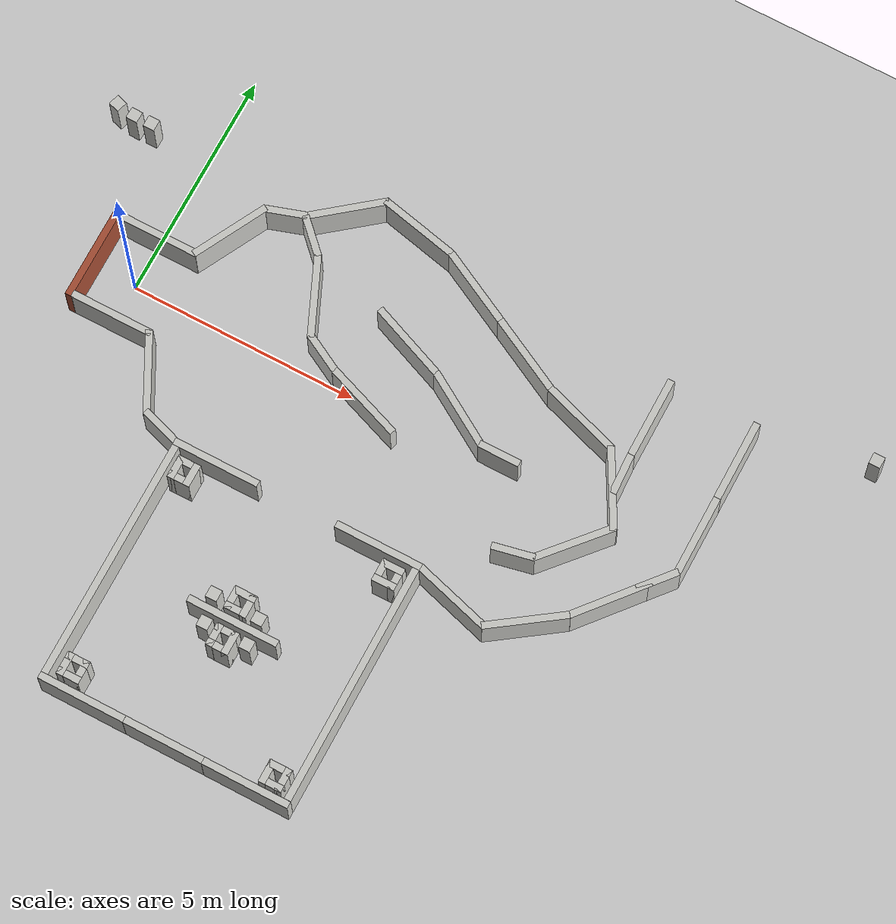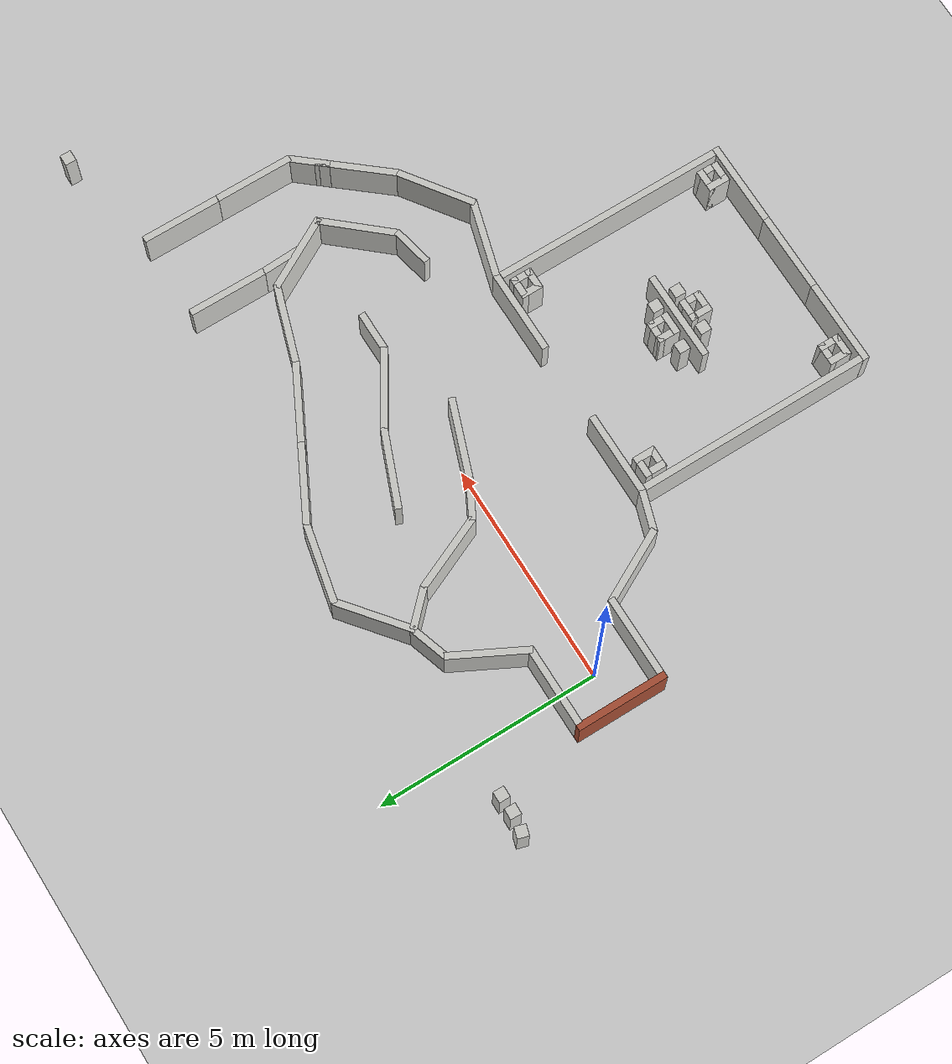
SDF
<sdf version="1.6">
 <world name="default">
  <model name="ground_plane">
   <static>1</static>
   <link name="link">
    <collision name="collision">
     <geometry><plane><normal>0 0 1</normal><size>100 100</size></plane></geometry>
     <surface><friction><ode><mu>100</mu><mu2>50</mu2></ode></friction></surface>
    </collision>
    <visual name="visual">
     <cast_shadows>0</cast_shadows>
     <geometry><plane><normal>0 0 1</normal><size>100 100</size></plane></geometry>
     <material>
      <script><uri>file://media/materials/scripts/concrete.material</uri><name>Concrete/1</name></script>
     </material>
    </visual>
   </link>
  </model>
  <model name="track_end">
   <static>1</static>
   <pose>0 0 0 0 -0 1.5708</pose>
   <link name="Wall_1">
    <collision name="Wall_1_Collision">
     <geometry><box><size>1.8 0.15 1</size></box></geometry>
     <pose>0 0 0.5 0 -0 0</pose>
    </collision>
    <visual name="Wall_1_Visual">
     <pose>0 0 0.5 0 -0 0</pose>
     <geometry><box><size>1.8 0.15 1</size></box></geometry>
     <material>
      <script><uri>file://media/materials/scripts/gazebo.material</uri><name>Gazebo/CeilingTiled</name></script>
      <ambient>1 0.764706 0.305882 1</ambient>
     </material>
    </visual>
    <pose>-0.95 -0.065 0 0 0 -1.5708</pose>
   </link>
   <link name="Wall_2">
    <collision name="Wall_2_Collision">
     <geometry><box><size>1.8 0.15 1</size></box></geometry>
     <pose>0 0 0.5 0 -0 0</pose>
    </collision>
    <visual name="Wall_2_Visual">
     <pose>0 0 0.5 0 -0 0</pose>
     <geometry><box><size>1.8 0.15 1</size></box></geometry>
     <material>
      <script><uri>file://media/materials/scripts/gazebo.material</uri><name>Gazebo/CeilingTiled</name></script>
      <ambient>1 0.764706 0.305882 1</ambient>
     </material>
    </visual>
    <pose>0.95 -0.065 0 0 0 -1.5708</pose>
   </link>
   <link name="Wall_3">
    <collision name="Wall_3_Collision">
     <geometry><box><size>2.05 0.15 1.5</size></box></geometry>
     <pose>0 0 0.75 0 -0 0</pose>
    </collision>
    <visual name="Wall_3_Visual">
     <pose>0 0 0.5 0 -0 0</pose>
     <geometry><box><size>2.05 0.15 1</size></box></geometry>
     <material>
      <script><uri>file://media/materials/scripts/gazebo.material</uri><name>Gazebo/Bricks</name></script>
      <ambient>0.996078 0.47451 0.0196078 1</ambient>
     </material>
    </visual>
    <pose>0 0.89 0 0 -0 0</pose>
   </link>
  </model>
  <model name="obstacle_wall_full">
   <static>1</static>
   <pose>1.3045 -1.68499 0 0 0 -1.08983</pose>
   <link name="Wall">
    <collision name="Wall_Collision">
     <geometry><box><size>1.75 0.15 1</size></box></geometry>
     <pose>0 0 0.5 0 -0 0</pose>
    </collision>
    <visual name="Wall_Visual">
     <pose>0 0 0.5 0 -0 0</pose>
     <geometry><box><size>1.75 0.15 1</size></box></geometry>
     <material>
      <script><uri>file://media/materials/scripts/gazebo.material</uri><name>Gazebo/CeilingTiled</name></script>
      <ambient>1 0.764706 0.305882 1</ambient>
     </material>
    </visual>
   </link>
  </model>
  <model name="obstacle_wall_full_clone">
   <static>1</static>
   <pose>1.30409 1.69422 0 0 -0 1.08983</pose>
   <link name="Wall">
    <collision name="Wall_Collision">
     <geometry><box><size>1.75 0.15 1</size></box></geometry>
     <pose>0 0 0.5 0 -0 0</pose>
    </collision>
    <visual name="Wall_Visual">
     <pose>0 0 0.5 0 -0 0</pose>
     <geometry><box><size>1.75 0.15 1</size></box></geometry>
     <material>
      <script><uri>file://media/materials/scripts/gazebo.material</uri><name>Gazebo/CeilingTiled</name></script>
      <ambient>1 0.764706 0.305882 1</ambient>
     </material>
    </visual>
   </link>
  </model>
  <model name="obstacle_wall_short">
   <static>1</static>
   <pose>2.09444 -2.56147 0 0 0 -0.312022</pose>
   <link name="Wall">
    <collision name="Wall_Collision">
     <geometry><box><size>0.9 0.15 1</size></box></geometry>
     <pose>0 0 0.5 0 -0 0</pose>
    </collision>
    <visual name="Wall_Visual">
     <pose>0 0 0.5 0 -0 0</pose>
     <geometry><box><size>0.9 0.15 1</size></box></geometry>
     <material>
      <script><uri>file://media/materials/scripts/gazebo.material</uri><name>Gazebo/CeilingTiled</name></script>
      <ambient>1 0.764706 0.305882 1</ambient>
     </material>
    </visual>
   </link>
  </model>
  <model name="obstacle_wall_short_clone">
   <static>1</static>
   <pose>2.09475 2.57016 0 0 -0 0.312022</pose>
   <link name="Wall">
    <collision name="Wall_Collision">
     <geometry><box><size>0.9 0.15 1</size></box></geometry>
     <pose>0 0 0.5 0 -0 0</pose>
    </collision>
    <visual name="Wall_Visual">
     <pose>0 0 0.5 0 -0 0</pose>
     <geometry><box><size>0.9 0.15 1</size></box></geometry>
     <material>
      <script><uri>file://media/materials/scripts/gazebo.material</uri><name>Gazebo/CeilingTiled</name></script>
      <ambient>1 0.764706 0.305882 1</ambient>
     </material>
    </visual>
   </link>
  </model>
  <model name="obstacle_wall_full_1">
   <static>1</static>
   <pose>5.57374 1.31756 0 0 0 -0.381039</pose>
   <link name="Wall">
    <collision name="Wall_Collision">
     <geometry><box><size>1.75 0.15 1</size></box></geometry>
     <pose>0 0 0.5 0 -0 0</pose>
    </collision>
    <visual name="Wall_Visual">
     <pose>0 0 0.5 0 -0 0</pose>
     <geometry><box><size>1.75 0.15 1</size></box></geometry>
     <material>
      <script><uri>file://media/materials/scripts/gazebo.material</uri><name>Gazebo/CeilingTiled</name></script>
      <ambient>1 0.764706 0.305882 1</ambient>
     </material>
    </visual>
   </link>
  </model>
  <model name="obstacle_wall_full_2">
   <static>1</static>
   <pose>3.14271 3.20394 0 0 -0 0.673556</pose>
   <link name="Wall">
    <collision name="Wall_Collision">
     <geometry><box><size>1.75 0.15 1</size></box></geometry>
     <pose>0 0 0.5 0 -0 0</pose>
    </collision>
    <visual name="Wall_Visual">
     <pose>0 0 0.5 0 -0 0</pose>
     <geometry><box><size>1.75 0.15 1</size></box></geometry>
     <material>
      <script><uri>file://media/materials/scripts/gazebo.material</uri><name>Gazebo/CeilingTiled</name></script>
      <ambient>1 0.764706 0.305882 1</ambient>
     </material>
    </visual>
   </link>
  </model>
  <model name="obstacle_wall_short_0">
   <static>1</static>
   <pose>2.80877 2.37167 0 0 0 -0.784312</pose>
   <link name="Wall">
    <collision name="Wall_Collision">
     <geometry><box><size>0.9 0.15 1</size></box></geometry>
     <pose>0 0 0.5 0 -0 0</pose>
    </collision>
    <visual name="Wall_Visual">
     <pose>0 0 0.5 0 -0 0</pose>
     <geometry><box><size>0.9 0.15 1</size></box></geometry>
     <material>
      <script><uri>file://media/materials/scripts/gazebo.material</uri><name>Gazebo/CeilingTiled</name></script>
      <ambient>1 0.764706 0.305882 1</ambient>
     </material>
    </visual>
   </link>
  </model>
  <model name="obstacle_wall_full_3">
   <static>1</static>
   <pose>4.62017 3.54539 0 0 0 -0.217442</pose>
   <link name="Wall">
    <collision name="Wall_Collision">
     <geometry><box><size>1.75 0.15 1</size></box></geometry>
     <pose>0 0 0.5 0 -0 0</pose>
    </collision>
    <visual name="Wall_Visual">
     <pose>0 0 0.5 0 -0 0</pose>
     <geometry><box><size>1.75 0.15 1</size></box></geometry>
     <material>
      <script><uri>file://media/materials/scripts/gazebo.material</uri><name>Gazebo/CeilingTiled</name></script>
      <ambient>1 0.764706 0.305882 1</ambient>
     </material>
    </visual>
   </link>
  </model>
  <model name="obstacle_wall_full_3_clone">
   <static>1</static>
   <pose>6.22651 2.96567 0 0 0 -0.475423</pose>
   <link name="Wall">
    <collision name="Wall_Collision">
     <geometry><box><size>1.75 0.15 1</size></box></geometry>
     <pose>0 0 0.5 0 -0 0</pose>
    </collision>
    <visual name="Wall_Visual">
     <pose>0 0 0.5 0 -0 0</pose>
     <geometry><box><size>1.75 0.15 1</size></box></geometry>
     <material>
      <script><uri>file://media/materials/scripts/gazebo.material</uri><name>Gazebo/CeilingTiled</name></script>
      <ambient>1 0.764706 0.305882 1</ambient>
     </material>
    </visual>
   </link>
  </model>
  <model name="obstacle_wall_full_3_clone_0">
   <static>1</static>
   <pose>9.37232 1.50284 0 0 0 -0.313905</pose>
   <link name="Wall">
    <collision name="Wall_Collision">
     <geometry><box><size>1.75 0.15 1</size></box></geometry>
     <pose>0 0 0.5 0 -0 0</pose>
    </collision>
    <visual name="Wall_Visual">
     <pose>0 0 0.5 0 -0 0</pose>
     <geometry><box><size>1.75 0.15 1</size></box></geometry>
     <material>
      <script><uri>file://media/materials/scripts/gazebo.material</uri><name>Gazebo/CeilingTiled</name></script>
      <ambient>1 0.764706 0.305882 1</ambient>
     </material>
    </visual>
   </link>
  </model>
  <model name="obstacle_wall_full_1_clone">
   <static>1</static>
   <pose>5.39001 -0.205171 0 0 0 -0.350489</pose>
   <link name="Wall">
    <collision name="Wall_Collision">
     <geometry><box><size>1.75 0.15 1</size></box></geometry>
     <pose>0 0 0.5 0 -0 0</pose>
    </collision>
    <visual name="Wall_Visual">
     <pose>0 0 0.5 0 -0 0</pose>
     <geometry><box><size>1.75 0.15 1</size></box></geometry>
     <material>
      <script><uri>file://media/materials/scripts/gazebo.material</uri><name>Gazebo/CeilingTiled</name></script>
      <ambient>1 0.764706 0.305882 1</ambient>
     </material>
    </visual>
   </link>
  </model>
  <model name="obstacle_wall_full_1_clone_clone">
   <static>1</static>
   <pose>3.46437 1.27793 0 0 0 -1.15469</pose>
   <link name="Wall">
    <collision name="Wall_Collision">
     <geometry><box><size>1.75 0.15 1</size></box></geometry>
     <pose>0 0 0.5 0 -0 0</pose>
    </collision>
    <visual name="Wall_Visual">
     <pose>0 0 0.5 0 -0 0</pose>
     <geometry><box><size>1.75 0.15 1</size></box></geometry>
     <material>
      <script><uri>file://media/materials/scripts/gazebo.material</uri><name>Gazebo/CeilingTiled</name></script>
      <ambient>1 0.764706 0.305882 1</ambient>
     </material>
    </visual>
   </link>
  </model>
  <model name="obstacle_wall_full_1_clone_0">
   <static>1</static>
   <pose>7.12219 0.54276 0 0 0 -0.548597</pose>
   <link name="Wall">
    <collision name="Wall_Collision">
     <geometry><box><size>1.75 0.15 1</size></box></geometry>
     <pose>0 0 0.5 0 -0 0</pose>
    </collision>
    <visual name="Wall_Visual">
     <pose>0 0 0.5 0 -0 0</pose>
     <geometry><box><size>1.75 0.15 1</size></box></geometry>
     <material>
      <script><uri>file://media/materials/scripts/gazebo.material</uri><name>Gazebo/CeilingTiled</name></script>
      <ambient>1 0.764706 0.305882 1</ambient>
     </material>
    </visual>
   </link>
  </model>
  <model name="obstacle_wall_full_1_clone_clone_0">
   <static>1</static>
   <pose>8.83537 -2.93365 0 0 0 -0.280347</pose>
   <link name="Wall">
    <collision name="Wall_Collision">
     <geometry><box><size>1.75 0.15 1</size></box></geometry>
     <pose>0 0 0.5 0 -0 0</pose>
    </collision>
    <visual name="Wall_Visual">
     <pose>0 0 0.5 0 -0 0</pose>
     <geometry><box><size>1.75 0.15 1</size></box></geometry>
     <material>
      <script><uri>file://media/materials/scripts/gazebo.material</uri><name>Gazebo/CeilingTiled</name></script>
      <ambient>1 0.764706 0.305882 1</ambient>
     </material>
    </visual>
   </link>
  </model>
  <model name="obstacle_wall_full_1_clone_clone_1">
   <static>1</static>
   <pose>10.3251 -2.68236 0 0 -0 0.614772</pose>
   <link name="Wall">
    <collision name="Wall_Collision">
     <geometry><box><size>1.75 0.15 1</size></box></geometry>
     <pose>0 0 0.5 0 -0 0</pose>
    </collision>
    <visual name="Wall_Visual">
     <pose>0 0 0.5 0 -0 0</pose>
     <geometry><box><size>1.75 0.15 1</size></box></geometry>
     <material>
      <script><uri>file://media/materials/scripts/gazebo.material</uri><name>Gazebo/CeilingTiled</name></script>
      <ambient>1 0.764706 0.305882 1</ambient>
     </material>
    </visual>
   </link>
  </model>
  <model name="obstacle_wall_short_1">
   <static>1</static>
   <pose>4.18297 0.301276 0 0 0 -0.489846</pose>
   <link name="Wall">
    <collision name="Wall_Collision">
     <geometry><box><size>0.9 0.15 1</size></box></geometry>
     <pose>0 0 0.5 0 -0 0</pose>
    </collision>
    <visual name="Wall_Visual">
     <pose>0 0 0.5 0 -0 0</pose>
     <geometry><box><size>0.9 0.15 1</size></box></geometry>
     <material>
      <script><uri>file://media/materials/scripts/gazebo.material</uri><name>Gazebo/CeilingTiled</name></script>
      <ambient>1 0.764706 0.305882 1</ambient>
     </material>
    </visual>
   </link>
  </model>
  <model name="obstacle_wall_full_4">
   <static>1</static>
   <pose>10.4365 -0.832267 0 0 0 -2.28923</pose>
   <link name="Wall">
    <collision name="Wall_Collision">
     <geometry><box><size>1.75 0.15 1</size></box></geometry>
     <pose>0 0 0.5 0 -0 0</pose>
    </collision>
    <visual name="Wall_Visual">
     <pose>0 0 0.5 0 -0 0</pose>
     <geometry><box><size>1.75 0.15 1</size></box></geometry>
     <material>
      <script><uri>file://media/materials/scripts/gazebo.material</uri><name>Gazebo/CeilingTiled</name></script>
      <ambient>1 0.764706 0.305882 1</ambient>
     </material>
    </visual>
   </link>
  </model>
  <model name="obstacle_wall_full_3_clone_clone">
   <static>1</static>
   <pose>7.77548 2.16764 0 0 0 -0.475423</pose>
   <link name="Wall">
    <collision name="Wall_Collision">
     <geometry><box><size>1.75 0.15 1</size></box></geometry>
     <pose>0 0 0.5 0 -0 0</pose>
    </collision>
    <visual name="Wall_Visual">
     <pose>0 0 0.5 0 -0 0</pose>
     <geometry><box><size>1.75 0.15 1</size></box></geometry>
     <material>
      <script><uri>file://media/materials/scripts/gazebo.material</uri><name>Gazebo/CeilingTiled</name></script>
      <ambient>1 0.764706 0.305882 1</ambient>
     </material>
    </visual>
   </link>
  </model>
  <model name="room_3x3_split">
   <static>1</static>
   <pose>5.24355 -5.39607 0 0 -0 0</pose>
   <link name="Wall_1">
    <collision name="Wall_1_Collision">
     <geometry><box><size>5.25 0.15 1</size></box></geometry>
     <pose>0 0 0.5 0 -0 0</pose>
    </collision>
    <visual name="Wall_1_Visual">
     <pose>0 0 0.5 0 -0 0</pose>
     <geometry><box><size>5.25 0.15 1</size></box></geometry>
     <material>
      <script><uri>file://media/materials/scripts/gazebo.material</uri><name>Gazebo/CeilingTiled</name></script>
      <ambient>1 0.764706 0.305882 1</ambient>
     </material>
    </visual>
    <pose>-2.69653 -0.003278 0 0 0 -1.5708</pose>
   </link>
   <link name="Wall_2">
    <collision name="Wall_2_Collision">
     <geometry><box><size>5.25 0.15 1</size></box></geometry>
     <pose>0 0 0.5 0 -0 0</pose>
    </collision>
    <visual name="Wall_2_Visual">
     <pose>0 0 0.5 0 -0 0</pose>
     <geometry><box><size>5.25 0.15 1</size></box></geometry>
     <material>
      <script><uri>file://media/materials/scripts/gazebo.material</uri><name>Gazebo/CeilingTiled</name></script>
      <ambient>1 0.764706 0.305882 1</ambient>
     </material>
    </visual>
    <pose>2.69688 -0.000452 0 0 0 -1.5708</pose>
   </link>
   <link name="Wall_3">
    <collision name="Wall_3_Collision">
     <geometry><box><size>1.9 0.15 1</size></box></geometry>
     <pose>0 0 0.5 0 -0 0</pose>
    </collision>
    <visual name="Wall_3_Visual">
     <pose>0 0 0.5 0 -0 0</pose>
     <geometry><box><size>1.9 0.15 1</size></box></geometry>
     <material>
      <script><uri>file://media/materials/scripts/gazebo.material</uri><name>Gazebo/CeilingTiled</name></script>
      <ambient>1 0.764706 0.305882 1</ambient>
     </material>
    </visual>
    <pose>-1.82279 -2.70217 0 0 -0 0</pose>
   </link>
   <link name="Wall_4">
    <collision name="Wall_4_Collision">
     <geometry><box><size>1.9 0.15 1</size></box></geometry>
     <pose>0 0 0.5 0 -0 0</pose>
    </collision>
    <visual name="Wall_4_Visual">
     <pose>0 0 0.5 0 -0 0</pose>
     <geometry><box><size>1.9 0.15 1</size></box></geometry>
     <material>
      <script><uri>file://media/materials/scripts/gazebo.material</uri><name>Gazebo/CeilingTiled</name></script>
      <ambient>1 0.764706 0.305882 1</ambient>
     </material>
    </visual>
    <pose>-1.82219 2.69878 0 0 -0 0</pose>
   </link>
   <link name="Wall_5">
    <collision name="Wall_5_Collision">
     <geometry><box><size>1.9 0.15 1</size></box></geometry>
     <pose>0 0 0.5 0 -0 0</pose>
    </collision>
    <visual name="Wall_5_Visual">
     <pose>0 0 0.5 0 -0 0</pose>
     <geometry><box><size>1.9 0.15 1</size></box></geometry>
     <material>
      <script><uri>file://media/materials/scripts/gazebo.material</uri><name>Gazebo/CeilingTiled</name></script>
      <ambient>1 0.764706 0.305882 1</ambient>
     </material>
    </visual>
    <pose>1.82194 2.70217 0 0 -0 0</pose>
   </link>
   <link name="Wall_6">
    <collision name="Wall_6_Collision">
     <geometry><box><size>1.9 0.15 1</size></box></geometry>
     <pose>0 0 0.5 0 -0 0</pose>
    </collision>
    <visual name="Wall_6_Visual">
     <pose>0 0 0.5 0 -0 0</pose>
     <geometry><box><size>1.9 0.15 1</size></box></geometry>
     <material>
      <script><uri>file://media/materials/scripts/gazebo.material</uri><name>Gazebo/CeilingTiled</name></script>
      <ambient>1 0.764706 0.305882 1</ambient>
     </material>
    </visual>
    <pose>1.82279 -2.70173 0 0 -0 0</pose>
   </link>
   <link name="Wall_7">
    <collision name="Wall_7_Collision">
     <geometry><box><size>2 0.15 1</size></box></geometry>
     <pose>0 0 0.5 0 -0 0</pose>
    </collision>
    <visual name="Wall_7_Visual">
     <pose>0 0 0.5 0 -0 0</pose>
     <geometry><box><size>2 0.15 1</size></box></geometry>
     <material>
      <script><uri>file://media/materials/scripts/gazebo.material</uri><name>Gazebo/CeilingTiled</name></script>
      <ambient>1 0.764706 0.305882 1</ambient>
     </material>
    </visual>
    <pose>0.033144 0.01482 0 0 -0 0</pose>
   </link>
  </model>
  <model name="obstacle_wall_full_6">
   <static>1</static>
   <pose>5.24644 -8.09756 0 0 -0 0</pose>
   <link name="Wall">
    <collision name="Wall_Collision">
     <geometry><box><size>1.75 0.15 1</size></box></geometry>
     <pose>0 0 0.5 0 -0 0</pose>
    </collision>
    <visual name="Wall_Visual">
     <pose>0 0 0.5 0 -0 0</pose>
     <geometry><box><size>1.75 0.15 1</size></box></geometry>
     <material>
      <script><uri>file://media/materials/scripts/gazebo.material</uri><name>Gazebo/CeilingTiled</name></script>
      <ambient>1 0.764706 0.305882 1</ambient>
     </material>
    </visual>
   </link>
  </model>
  <model name="obstacle_wall_short_3">
   <static>1</static>
   <pose>8.28156 0.092512 0 0 -0 0</pose>
   <link name="Wall">
    <collision name="Wall_Collision">
     <geometry><box><size>0.9 0.15 1</size></box></geometry>
     <pose>0 0 0.5 0 -0 0</pose>
    </collision>
    <visual name="Wall_Visual">
     <pose>0 0 0.5 0 -0 0</pose>
     <geometry><box><size>0.9 0.15 1</size></box></geometry>
     <material>
      <script><uri>file://media/materials/scripts/gazebo.material</uri><name>Gazebo/CeilingTiled</name></script>
      <ambient>1 0.764706 0.305882 1</ambient>
     </material>
    </visual>
   </link>
  </model>
  <model name="obstacle_wall_full_7">
   <static>1</static>
   <pose>10.5839 0.504469 0 0 0 -1.06076</pose>
   <link name="Wall">
    <collision name="Wall_Collision">
     <geometry><box><size>1.75 0.15 1</size></box></geometry>
     <pose>0 0 0.5 0 -0 0</pose>
    </collision>
    <visual name="Wall_Visual">
     <pose>0 0 0.5 0 -0 0</pose>
     <geometry><box><size>1.75 0.15 1</size></box></geometry>
     <material>
      <script><uri>file://media/materials/scripts/gazebo.material</uri><name>Gazebo/CeilingTiled</name></script>
      <ambient>1 0.764706 0.305882 1</ambient>
     </material>
    </visual>
   </link>
  </model>
  <model name="obstacle_wall_short_4">
   <static>1</static>
   <pose>9.46195 -1.56066 0 0 -0 0.208509</pose>
   <link name="Wall">
    <collision name="Wall_Collision">
     <geometry><box><size>0.9 0.15 1</size></box></geometry>
     <pose>0 0 0.5 0 -0 0</pose>
    </collision>
    <visual name="Wall_Visual">
     <pose>0 0 0.5 0 -0 0</pose>
     <geometry><box><size>0.9 0.15 1</size></box></geometry>
     <material>
      <script><uri>file://media/materials/scripts/gazebo.material</uri><name>Gazebo/CeilingTiled</name></script>
      <ambient>1 0.764706 0.305882 1</ambient>
     </material>
    </visual>
   </link>
  </model>
  <model name="obstacle_wall_full_8">
   <static>1</static>
   <pose>11.5895 -1.51746 0 0 -0 0.874719</pose>
   <link name="Wall">
    <collision name="Wall_Collision">
     <geometry><box><size>1.75 0.15 1</size></box></geometry>
     <pose>0 0 0.5 0 -0 0</pose>
    </collision>
    <visual name="Wall_Visual">
     <pose>0 0 0.5 0 -0 0</pose>
     <geometry><box><size>1.75 0.15 1</size></box></geometry>
     <material>
      <script><uri>file://media/materials/scripts/gazebo.material</uri><name>Gazebo/CeilingTiled</name></script>
      <ambient>1 0.764706 0.305882 1</ambient>
     </material>
    </visual>
   </link>
  </model>
  <model name="track_straight">
   <static>1</static>
   <pose>11.5484 2.17193 0 0 -0 0</pose>
   <link name="Wall_1">
    <collision name="Wall_1_Collision">
     <geometry><box><size>1.75 0.15 1</size></box></geometry>
     <pose>0 0 0.5 0 -0 0</pose>
    </collision>
    <visual name="Wall_1_Visual">
     <pose>0 0 0.5 0 -0 0</pose>
     <geometry><box><size>1.75 0.15 1</size></box></geometry>
     <material>
      <script><uri>file://media/materials/scripts/gazebo.material</uri><name>Gazebo/CeilingTiled</name></script>
      <ambient>1 0.764706 0.305882 1</ambient>
     </material>
    </visual>
    <pose>-0.955 0.002 0 0 0 -1.5708</pose>
   </link>
   <link name="Wall_2">
    <collision name="Wall_2_Collision">
     <geometry><box><size>1.75 0.15 1</size></box></geometry>
     <pose>0 0 0.5 0 -0 0</pose>
    </collision>
    <visual name="Wall_2_Visual">
     <pose>0 0 0.5 0 -0 0</pose>
     <geometry><box><size>1.75 0.15 1</size></box></geometry>
     <material>
      <script><uri>file://media/materials/scripts/gazebo.material</uri><name>Gazebo/CeilingTiled</name></script>
      <ambient>1 0.764706 0.305882 1</ambient>
     </material>
    </visual>
    <pose>0.955 0.002 0 0 0 -1.5708</pose>
   </link>
  </model>
  <model name="obstacle_wall_full_10">
   <static>1</static>
   <pose>12.5056 0.423565 0 0 0 -1.5708</pose>
   <link name="Wall">
    <collision name="Wall_Collision">
     <geometry><box><size>1.75 0.15 1</size></box></geometry>
     <pose>0 0 0.5 0 -0 0</pose>
    </collision>
    <visual name="Wall_Visual">
     <pose>0 0 0.5 0 -0 0</pose>
     <geometry><box><size>1.75 0.15 1</size></box></geometry>
     <material>
      <script><uri>file://media/materials/scripts/gazebo.material</uri><name>Gazebo/CeilingTiled</name></script>
      <ambient>1 0.764706 0.305882 1</ambient>
     </material>
    </visual>
   </link>
  </model>
  <model name="obstacle_wall_short_7">
   <static>1</static>
   <pose>12.2351 -0.745772 0 0 -0 0.872096</pose>
   <link name="Wall">
    <collision name="Wall_Collision">
     <geometry><box><size>0.9 0.15 1</size></box></geometry>
     <pose>0 0 0.5 0 -0 0</pose>
    </collision>
    <visual name="Wall_Visual">
     <pose>0 0 0.5 0 -0 0</pose>
     <geometry><box><size>0.9 0.15 1</size></box></geometry>
     <material>
      <script><uri>file://media/materials/scripts/gazebo.material</uri><name>Gazebo/CeilingTiled</name></script>
      <ambient>1 0.764706 0.305882 1</ambient>
     </material>
    </visual>
   </link>
  </model>
  <model name="obstacle_wall_short_8">
   <static>1</static>
   <pose>10.6141 0.867782 0 0 0 -1.5211</pose>
   <link name="Wall">
    <collision name="Wall_Collision">
     <geometry><box><size>0.9 0.15 1</size></box></geometry>
     <pose>0 0 0.5 0 -0 0</pose>
    </collision>
    <visual name="Wall_Visual">
     <pose>0 0 0.5 0 -0 0</pose>
     <geometry><box><size>0.9 0.15 1</size></box></geometry>
     <material>
      <script><uri>file://media/materials/scripts/gazebo.material</uri><name>Gazebo/CeilingTiled</name></script>
      <ambient>1 0.764706 0.305882 1</ambient>
     </material>
    </visual>
   </link>
  </model>
  <model name="obstacle_squarepillar_small_4">
   <static>1</static>
   <pose>-1.2206 2.97591 0 0 -0 0</pose>
   <link name="Pillar">
    <collision name="Pillar_Collision">
     <geometry><box><size>0.25 0.25 1</size></box></geometry>
     <pose>0 0 0.5 0 -0 0</pose>
    </collision>
    <visual name="Pillar_Visual">
     <pose>0 0 0.5 0 -0 0</pose>
     <geometry><box><size>0.25 0.25 1</size></box></geometry>
     <material>
      <script><uri>file://media/materials/scripts/gazebo.material</uri><name>Gazebo/CeilingTiled</name></script>
      <ambient>1 0.764706 0.305882 1</ambient>
     </material>
    </visual>
   </link>
  </model>
  <model name="obstacle_squarepillar_small_5">
   <static>1</static>
   <pose>-1.6129 2.96634 0 0 0 -0.035015</pose>
   <link name="Pillar">
    <collision name="Pillar_Collision">
     <geometry><box><size>0.25 0.25 1</size></box></geometry>
     <pose>0 0 0.5 0 -0 0</pose>
    </collision>
    <visual name="Pillar_Visual">
     <pose>0 0 0.5 0 -0 0</pose>
     <geometry><box><size>0.25 0.25 1</size></box></geometry>
     <material>
      <script><uri>file://media/materials/scripts/gazebo.material</uri><name>Gazebo/CeilingTiled</name></script>
      <ambient>1 0.764706 0.305882 1</ambient>
     </material>
    </visual>
   </link>
  </model>
  <model name="obstacle_squarepillar_small_6">
   <static>1</static>
   <pose>-2.0306 3.03182 0 0 0 -0.292226</pose>
   <link name="Pillar">
    <collision name="Pillar_Collision">
     <geometry><box><size>0.25 0.25 1</size></box></geometry>
     <pose>0 0 0.5 0 -0 0</pose>
    </collision>
    <visual name="Pillar_Visual">
     <pose>0 0 0.5 0 -0 0</pose>
     <geometry><box><size>0.25 0.25 1</size></box></geometry>
     <material>
      <script><uri>file://media/materials/scripts/gazebo.material</uri><name>Gazebo/CeilingTiled</name></script>
      <ambient>1 0.764706 0.305882 1</ambient>
     </material>
    </visual>
   </link>
  </model>
  <model name="obstacle_squarepillar_small_7_clone_6_clone_1_clone_0">
   <static>1</static>
   <pose>14.9435 3.47267 0 0 -0 0</pose>
   <link name="Pillar">
    <collision name="Pillar_Collision">
     <geometry><box><size>0.25 0.25 1</size></box></geometry>
     <pose>0 0 0.5 0 -0 0</pose>
    </collision>
    <visual name="Pillar_Visual">
     <pose>0 0 0.5 0 -0 0</pose>
     <geometry><box><size>0.25 0.25 1</size></box></geometry>
     <material>
      <script><uri>file://media/materials/scripts/gazebo.material</uri><name>Gazebo/CeilingTiled</name></script>
      <ambient>1 0.764706 0.305882 1</ambient>
     </material>
    </visual>
   </link>
  </model>
  <model name="obstacle_squarepillar_medium_1">
   <static>1</static>
   <pose>2.94437 -3.1541 0 0 -0 0</pose>
   <link name="Wall_1">
    <collision name="Wall_1_Collision">
     <geometry><box><size>0.5 0.15 1</size></box></geometry>
     <pose>0 0 0.5 0 -0 0</pose>
    </collision>
    <visual name="Wall_1_Visual">
     <pose>0 0 0.5 0 -0 0</pose>
     <geometry><box><size>0.5 0.15 1</size></box></geometry>
     <material>
      <script><uri>file://media/materials/scripts/gazebo.material</uri><name>Gazebo/CeilingTiled</name></script>
      <ambient>1 0.764706 0.305882 1</ambient>
     </material>
    </visual>
    <pose>-0.175 0 0 0 0 -1.5708</pose>
   </link>
   <link name="Wall_2">
    <collision name="Wall_2_Collision">
     <geometry><box><size>0.5 0.15 1</size></box></geometry>
     <pose>0 0 0.5 0 -0 0</pose>
    </collision>
    <visual name="Wall_2_Visual">
     <pose>0 0 0.5 0 -0 0</pose>
     <geometry><box><size>0.5 0.15 1</size></box></geometry>
     <material>
      <script><uri>file://media/materials/scripts/gazebo.material</uri><name>Gazebo/CeilingTiled</name></script>
      <ambient>1 0.764706 0.305882 1</ambient>
     </material>
    </visual>
    <pose>0 -0.175 0 0 -0 0</pose>
   </link>
   <link name="Wall_3">
    <collision name="Wall_3_Collision">
     <geometry><box><size>0.5 0.15 1</size></box></geometry>
     <pose>0 0 0.5 0 -0 0</pose>
    </collision>
    <visual name="Wall_3_Visual">
     <pose>0 0 0.5 0 -0 0</pose>
     <geometry><box><size>0.5 0.15 1</size></box></geometry>
     <material>
      <script><uri>file://media/materials/scripts/gazebo.material</uri><name>Gazebo/CeilingTiled</name></script>
      <ambient>1 0.764706 0.305882 1</ambient>
     </material>
    </visual>
    <pose>0.175 0 0 0 -0 1.5708</pose>
   </link>
   <link name="Wall_4">
    <collision name="Wall_4_Collision">
     <geometry><box><size>0.5 0.15 1</size></box></geometry>
     <pose>0 0 0.5 0 -0 0</pose>
    </collision>
    <visual name="Wall_4_Visual">
     <pose>0 0 0.5 0 -0 0</pose>
     <geometry><box><size>0.5 0.15 1</size></box></geometry>
     <material>
      <script><uri>file://media/materials/scripts/gazebo.material</uri><name>Gazebo/CeilingTiled</name></script>
      <ambient>1 0.764706 0.305882 1</ambient>
     </material>
    </visual>
    <pose>0 0.175 0 0 -0 3.14159</pose>
   </link>
  </model>
  <model name="obstacle_squarepillar_medium_1_clone">
   <static>1</static>
   <pose>7.52051 -3.12697 0 0 -0 0</pose>
   <link name="Wall_1">
    <collision name="Wall_1_Collision">
     <geometry><box><size>0.5 0.15 1</size></box></geometry>
     <pose>0 0 0.5 0 -0 0</pose>
    </collision>
    <visual name="Wall_1_Visual">
     <pose>0 0 0.5 0 -0 0</pose>
     <geometry><box><size>0.5 0.15 1</size></box></geometry>
     <material>
      <script><uri>file://media/materials/scripts/gazebo.material</uri><name>Gazebo/CeilingTiled</name></script>
      <ambient>1 0.764706 0.305882 1</ambient>
     </material>
    </visual>
    <pose>-0.175 0 0 0 0 -1.5708</pose>
   </link>
   <link name="Wall_2">
    <collision name="Wall_2_Collision">
     <geometry><box><size>0.5 0.15 1</size></box></geometry>
     <pose>0 0 0.5 0 -0 0</pose>
    </collision>
    <visual name="Wall_2_Visual">
     <pose>0 0 0.5 0 -0 0</pose>
     <geometry><box><size>0.5 0.15 1</size></box></geometry>
     <material>
      <script><uri>file://media/materials/scripts/gazebo.material</uri><name>Gazebo/CeilingTiled</name></script>
      <ambient>1 0.764706 0.305882 1</ambient>
     </material>
    </visual>
    <pose>0 -0.175 0 0 -0 0</pose>
   </link>
   <link name="Wall_3">
    <collision name="Wall_3_Collision">
     <geometry><box><size>0.5 0.15 1</size></box></geometry>
     <pose>0 0 0.5 0 -0 0</pose>
    </collision>
    <visual name="Wall_3_Visual">
     <pose>0 0 0.5 0 -0 0</pose>
     <geometry><box><size>0.5 0.15 1</size></box></geometry>
     <material>
      <script><uri>file://media/materials/scripts/gazebo.material</uri><name>Gazebo/CeilingTiled</name></script>
      <ambient>1 0.764706 0.305882 1</ambient>
     </material>
    </visual>
    <pose>0.175 0 0 0 -0 1.5708</pose>
   </link>
   <link name="Wall_4">
    <collision name="Wall_4_Collision">
     <geometry><box><size>0.5 0.15 1</size></box></geometry>
     <pose>0 0 0.5 0 -0 0</pose>
    </collision>
    <visual name="Wall_4_Visual">
     <pose>0 0 0.5 0 -0 0</pose>
     <geometry><box><size>0.5 0.15 1</size></box></geometry>
     <material>
      <script><uri>file://media/materials/scripts/gazebo.material</uri><name>Gazebo/CeilingTiled</name></script>
      <ambient>1 0.764706 0.305882 1</ambient>
     </material>
    </visual>
    <pose>0 0.175 0 0 -0 3.14159</pose>
   </link>
  </model>
  <model name="obstacle_squarepillar_medium_1_clone_0">
   <static>1</static>
   <pose>7.50481 -7.70727 0 0 -0 0</pose>
   <link name="Wall_1">
    <collision name="Wall_1_Collision">
     <geometry><box><size>0.5 0.15 1</size></box></geometry>
     <pose>0 0 0.5 0 -0 0</pose>
    </collision>
    <visual name="Wall_1_Visual">
     <pose>0 0 0.5 0 -0 0</pose>
     <geometry><box><size>0.5 0.15 1</size></box></geometry>
     <material>
      <script><uri>file://media/materials/scripts/gazebo.material</uri><name>Gazebo/CeilingTiled</name></script>
      <ambient>1 0.764706 0.305882 1</ambient>
     </material>
    </visual>
    <pose>-0.175 0 0 0 0 -1.5708</pose>
   </link>
   <link name="Wall_2">
    <collision name="Wall_2_Collision">
     <geometry><box><size>0.5 0.15 1</size></box></geometry>
     <pose>0 0 0.5 0 -0 0</pose>
    </collision>
    <visual name="Wall_2_Visual">
     <pose>0 0 0.5 0 -0 0</pose>
     <geometry><box><size>0.5 0.15 1</size></box></geometry>
     <material>
      <script><uri>file://media/materials/scripts/gazebo.material</uri><name>Gazebo/CeilingTiled</name></script>
      <ambient>1 0.764706 0.305882 1</ambient>
     </material>
    </visual>
    <pose>0 -0.175 0 0 -0 0</pose>
   </link>
   <link name="Wall_3">
    <collision name="Wall_3_Collision">
     <geometry><box><size>0.5 0.15 1</size></box></geometry>
     <pose>0 0 0.5 0 -0 0</pose>
    </collision>
    <visual name="Wall_3_Visual">
     <pose>0 0 0.5 0 -0 0</pose>
     <geometry><box><size>0.5 0.15 1</size></box></geometry>
     <material>
      <script><uri>file://media/materials/scripts/gazebo.material</uri><name>Gazebo/CeilingTiled</name></script>
      <ambient>1 0.764706 0.305882 1</ambient>
     </material>
    </visual>
    <pose>0.175 0 0 0 -0 1.5708</pose>
   </link>
   <link name="Wall_4">
    <collision name="Wall_4_Collision">
     <geometry><box><size>0.5 0.15 1</size></box></geometry>
     <pose>0 0 0.5 0 -0 0</pose>
    </collision>
    <visual name="Wall_4_Visual">
     <pose>0 0 0.5 0 -0 0</pose>
     <geometry><box><size>0.5 0.15 1</size></box></geometry>
     <material>
      <script><uri>file://media/materials/scripts/gazebo.material</uri><name>Gazebo/CeilingTiled</name></script>
      <ambient>1 0.764706 0.305882 1</ambient>
     </material>
    </visual>
    <pose>0 0.175 0 0 -0 3.14159</pose>
   </link>
  </model>
  <model name="obstacle_squarepillar_medium_1_clone_1">
   <static>1</static>
   <pose>2.98639 -7.66605 0 0 -0 0</pose>
   <link name="Wall_1">
    <collision name="Wall_1_Collision">
     <geometry><box><size>0.5 0.15 1</size></box></geometry>
     <pose>0 0 0.5 0 -0 0</pose>
    </collision>
    <visual name="Wall_1_Visual">
     <pose>0 0 0.5 0 -0 0</pose>
     <geometry><box><size>0.5 0.15 1</size></box></geometry>
     <material>
      <script><uri>file://media/materials/scripts/gazebo.material</uri><name>Gazebo/CeilingTiled</name></script>
      <ambient>1 0.764706 0.305882 1</ambient>
     </material>
    </visual>
    <pose>-0.175 0 0 0 0 -1.5708</pose>
   </link>
   <link name="Wall_2">
    <collision name="Wall_2_Collision">
     <geometry><box><size>0.5 0.15 1</size></box></geometry>
     <pose>0 0 0.5 0 -0 0</pose>
    </collision>
    <visual name="Wall_2_Visual">
     <pose>0 0 0.5 0 -0 0</pose>
     <geometry><box><size>0.5 0.15 1</size></box></geometry>
     <material>
      <script><uri>file://media/materials/scripts/gazebo.material</uri><name>Gazebo/CeilingTiled</name></script>
      <ambient>1 0.764706 0.305882 1</ambient>
     </material>
    </visual>
    <pose>0 -0.175 0 0 -0 0</pose>
   </link>
   <link name="Wall_3">
    <collision name="Wall_3_Collision">
     <geometry><box><size>0.5 0.15 1</size></box></geometry>
     <pose>0 0 0.5 0 -0 0</pose>
    </collision>
    <visual name="Wall_3_Visual">
     <pose>0 0 0.5 0 -0 0</pose>
     <geometry><box><size>0.5 0.15 1</size></box></geometry>
     <material>
      <script><uri>file://media/materials/scripts/gazebo.material</uri><name>Gazebo/CeilingTiled</name></script>
      <ambient>1 0.764706 0.305882 1</ambient>
     </material>
    </visual>
    <pose>0.175 0 0 0 -0 1.5708</pose>
   </link>
   <link name="Wall_4">
    <collision name="Wall_4_Collision">
     <geometry><box><size>0.5 0.15 1</size></box></geometry>
     <pose>0 0 0.5 0 -0 0</pose>
    </collision>
    <visual name="Wall_4_Visual">
     <pose>0 0 0.5 0 -0 0</pose>
     <geometry><box><size>0.5 0.15 1</size></box></geometry>
     <material>
      <script><uri>file://media/materials/scripts/gazebo.material</uri><name>Gazebo/CeilingTiled</name></script>
      <ambient>1 0.764706 0.305882 1</ambient>
     </material>
    </visual>
    <pose>0 0.175 0 0 -0 3.14159</pose>
   </link>
  </model>
  <model name="obstacle_squarepillar_medium_1_clone_2">
   <static>1</static>
   <pose>5.27315 -5.79648 0 0 -0 0</pose>
   <link name="Wall_1">
    <collision name="Wall_1_Collision">
     <geometry><box><size>0.5 0.15 1</size></box></geometry>
     <pose>0 0 0.5 0 -0 0</pose>
    </collision>
    <visual name="Wall_1_Visual">
     <pose>0 0 0.5 0 -0 0</pose>
     <geometry><box><size>0.5 0.15 1</size></box></geometry>
     <material>
      <script><uri>file://media/materials/scripts/gazebo.material</uri><name>Gazebo/CeilingTiled</name></script>
      <ambient>1 0.764706 0.305882 1</ambient>
     </material>
    </visual>
    <pose>-0.175 0 0 0 0 -1.5708</pose>
   </link>
   <link name="Wall_2">
    <collision name="Wall_2_Collision">
     <geometry><box><size>0.5 0.15 1</size></box></geometry>
     <pose>0 0 0.5 0 -0 0</pose>
    </collision>
    <visual name="Wall_2_Visual">
     <pose>0 0 0.5 0 -0 0</pose>
     <geometry><box><size>0.5 0.15 1</size></box></geometry>
     <material>
      <script><uri>file://media/materials/scripts/gazebo.material</uri><name>Gazebo/CeilingTiled</name></script>
      <ambient>1 0.764706 0.305882 1</ambient>
     </material>
    </visual>
    <pose>0 -0.175 0 0 -0 0</pose>
   </link>
   <link name="Wall_3">
    <collision name="Wall_3_Collision">
     <geometry><box><size>0.5 0.15 1</size></box></geometry>
     <pose>0 0 0.5 0 -0 0</pose>
    </collision>
    <visual name="Wall_3_Visual">
     <pose>0 0 0.5 0 -0 0</pose>
     <geometry><box><size>0.5 0.15 1</size></box></geometry>
     <material>
      <script><uri>file://media/materials/scripts/gazebo.material</uri><name>Gazebo/CeilingTiled</name></script>
      <ambient>1 0.764706 0.305882 1</ambient>
     </material>
    </visual>
    <pose>0.175 0 0 0 -0 1.5708</pose>
   </link>
   <link name="Wall_4">
    <collision name="Wall_4_Collision">
     <geometry><box><size>0.5 0.15 1</size></box></geometry>
     <pose>0 0 0.5 0 -0 0</pose>
    </collision>
    <visual name="Wall_4_Visual">
     <pose>0 0 0.5 0 -0 0</pose>
     <geometry><box><size>0.5 0.15 1</size></box></geometry>
     <material>
      <script><uri>file://media/materials/scripts/gazebo.material</uri><name>Gazebo/CeilingTiled</name></script>
      <ambient>1 0.764706 0.305882 1</ambient>
     </material>
    </visual>
    <pose>0 0.175 0 0 -0 3.14159</pose>
   </link>
  </model>
  <model name="obstacle_squarepillar_medium_1_clone_3">
   <static>1</static>
   <pose>5.22332 -4.97518 0 0 -0 0</pose>
   <link name="Wall_1">
    <collision name="Wall_1_Collision">
     <geometry><box><size>0.5 0.15 1</size></box></geometry>
     <pose>0 0 0.5 0 -0 0</pose>
    </collision>
    <visual name="Wall_1_Visual">
     <pose>0 0 0.5 0 -0 0</pose>
     <geometry><box><size>0.5 0.15 1</size></box></geometry>
     <material>
      <script><uri>file://media/materials/scripts/gazebo.material</uri><name>Gazebo/CeilingTiled</name></script>
      <ambient>1 0.764706 0.305882 1</ambient>
     </material>
    </visual>
    <pose>-0.175 0 0 0 0 -1.5708</pose>
   </link>
   <link name="Wall_2">
    <collision name="Wall_2_Collision">
     <geometry><box><size>0.5 0.15 1</size></box></geometry>
     <pose>0 0 0.5 0 -0 0</pose>
    </collision>
    <visual name="Wall_2_Visual">
     <pose>0 0 0.5 0 -0 0</pose>
     <geometry><box><size>0.5 0.15 1</size></box></geometry>
     <material>
      <script><uri>file://media/materials/scripts/gazebo.material</uri><name>Gazebo/CeilingTiled</name></script>
      <ambient>1 0.764706 0.305882 1</ambient>
     </material>
    </visual>
    <pose>0 -0.175 0 0 -0 0</pose>
   </link>
   <link name="Wall_3">
    <collision name="Wall_3_Collision">
     <geometry><box><size>0.5 0.15 1</size></box></geometry>
     <pose>0 0 0.5 0 -0 0</pose>
    </collision>
    <visual name="Wall_3_Visual">
     <pose>0 0 0.5 0 -0 0</pose>
     <geometry><box><size>0.5 0.15 1</size></box></geometry>
     <material>
      <script><uri>file://media/materials/scripts/gazebo.material</uri><name>Gazebo/CeilingTiled</name></script>
      <ambient>1 0.764706 0.305882 1</ambient>
     </material>
    </visual>
    <pose>0.175 0 0 0 -0 1.5708</pose>
   </link>
   <link name="Wall_4">
    <collision name="Wall_4_Collision">
     <geometry><box><size>0.5 0.15 1</size></box></geometry>
     <pose>0 0 0.5 0 -0 0</pose>
    </collision>
    <visual name="Wall_4_Visual">
     <pose>0 0 0.5 0 -0 0</pose>
     <geometry><box><size>0.5 0.15 1</size></box></geometry>
     <material>
      <script><uri>file://media/materials/scripts/gazebo.material</uri><name>Gazebo/CeilingTiled</name></script>
      <ambient>1 0.764706 0.305882 1</ambient>
     </material>
    </visual>
    <pose>0 0.175 0 0 -0 3.14159</pose>
   </link>
  </model>
  <model name="obstacle_squarepillar_small_8">
   <static>1</static>
   <pose>4.6809 -5.07278 0 0 -0 0</pose>
   <link name="Pillar">
    <collision name="Pillar_Collision">
     <geometry><box><size>0.25 0.25 1</size></box></geometry>
     <pose>0 0 0.5 0 -0 0</pose>
    </collision>
    <visual name="Pillar_Visual">
     <pose>0 0 0.5 0 -0 0</pose>
     <geometry><box><size>0.25 0.25 1</size></box></geometry>
     <material>
      <script><uri>file://media/materials/scripts/gazebo.material</uri><name>Gazebo/CeilingTiled</name></script>
      <ambient>1 0.764706 0.305882 1</ambient>
     </material>
    </visual>
   </link>
  </model>
  <model name="obstacle_squarepillar_small_8_clone">
   <static>1</static>
   <pose>5.70517 -5.10265 0 0 -0 0</pose>
   <link name="Pillar">
    <collision name="Pillar_Collision">
     <geometry><box><size>0.25 0.25 1</size></box></geometry>
     <pose>0 0 0.5 0 -0 0</pose>
    </collision>
    <visual name="Pillar_Visual">
     <pose>0 0 0.5 0 -0 0</pose>
     <geometry><box><size>0.25 0.25 1</size></box></geometry>
     <material>
      <script><uri>file://media/materials/scripts/gazebo.material</uri><name>Gazebo/CeilingTiled</name></script>
      <ambient>1 0.764706 0.305882 1</ambient>
     </material>
    </visual>
   </link>
  </model>
  <model name="obstacle_squarepillar_small_8_clone_0">
   <static>1</static>
   <pose>5.75109 -5.66791 0 0 -0 0</pose>
   <link name="Pillar">
    <collision name="Pillar_Collision">
     <geometry><box><size>0.25 0.25 1</size></box></geometry>
     <pose>0 0 0.5 0 -0 0</pose>
    </collision>
    <visual name="Pillar_Visual">
     <pose>0 0 0.5 0 -0 0</pose>
     <geometry><box><size>0.25 0.25 1</size></box></geometry>
     <material>
      <script><uri>file://media/materials/scripts/gazebo.material</uri><name>Gazebo/CeilingTiled</name></script>
      <ambient>1 0.764706 0.305882 1</ambient>
     </material>
    </visual>
   </link>
  </model>
  <model name="obstacle_squarepillar_small_8_clone_1">
   <static>1</static>
   <pose>4.80296 -5.66827 0 0 -0 0</pose>
   <link name="Pillar">
    <collision name="Pillar_Collision">
     <geometry><box><size>0.25 0.25 1</size></box></geometry>
     <pose>0 0 0.5 0 -0 0</pose>
    </collision>
    <visual name="Pillar_Visual">
     <pose>0 0 0.5 0 -0 0</pose>
     <geometry><box><size>0.25 0.25 1</size></box></geometry>
     <material>
      <script><uri>file://media/materials/scripts/gazebo.material</uri><name>Gazebo/CeilingTiled</name></script>
      <ambient>1 0.764706 0.305882 1</ambient>
     </material>
    </visual>
   </link>
  </model>
 </world>
</sdf>
